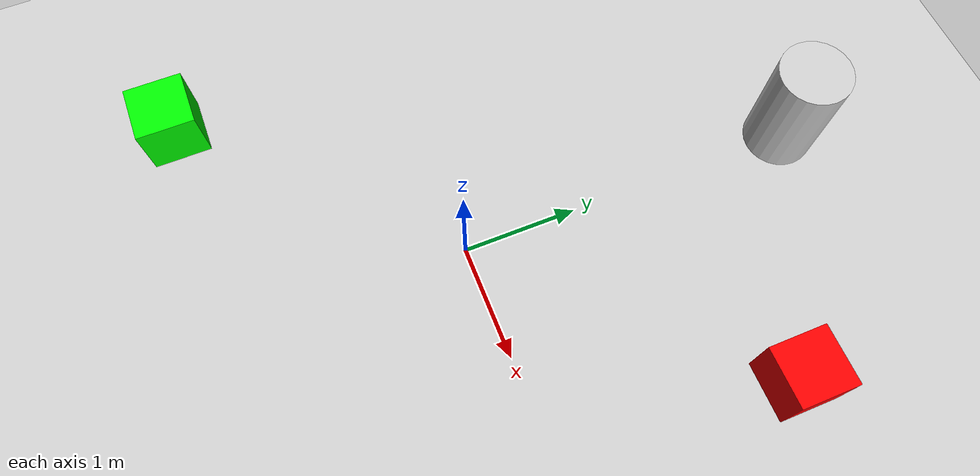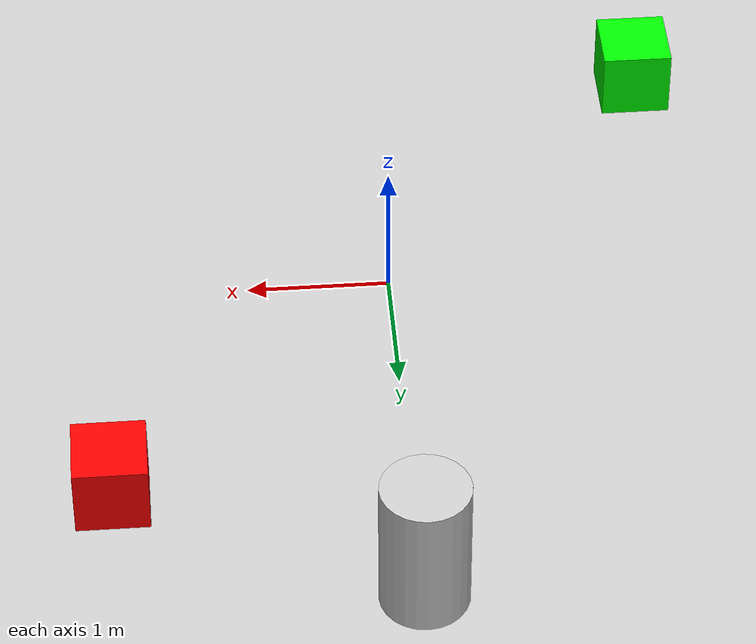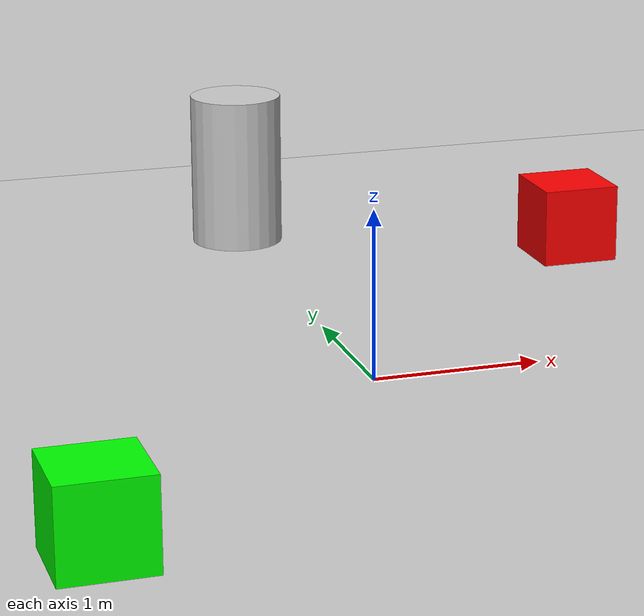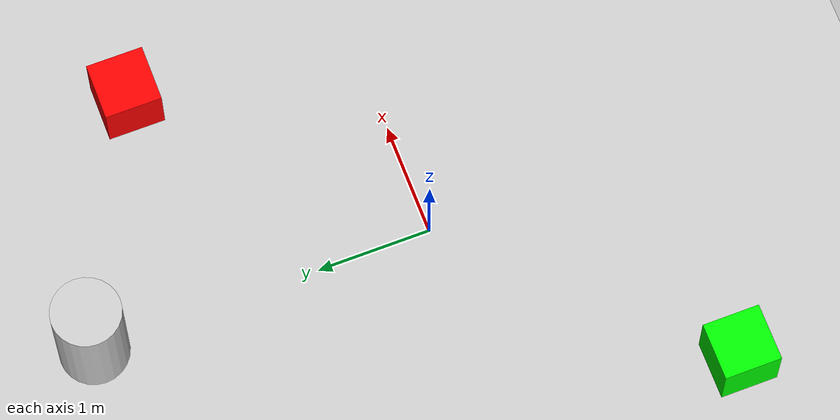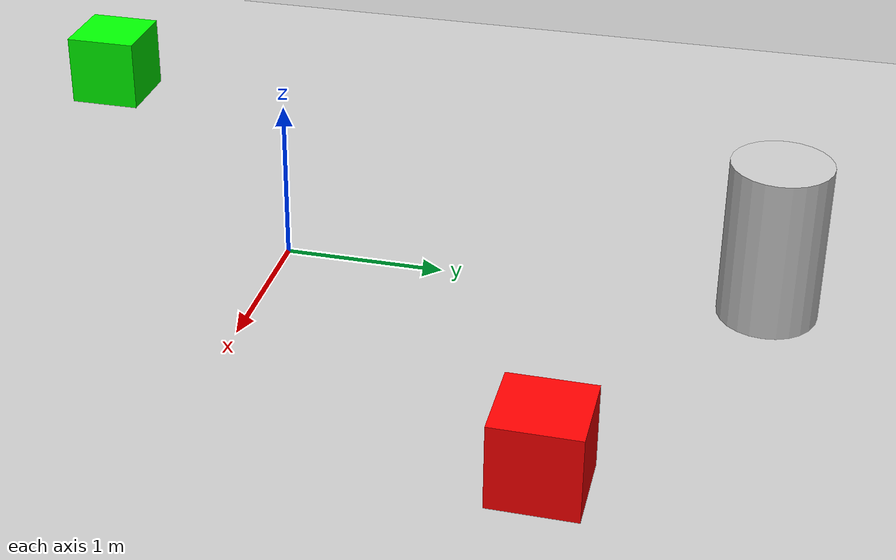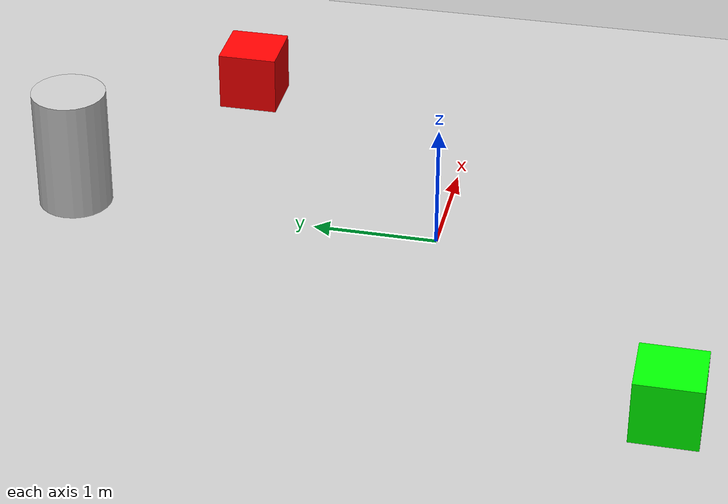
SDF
<?xml version="1.0" ?>
<sdf version="1.8">
  <world name="simple_world">
    <physics name="1ms" type="ignored">
      <max_step_size>0.001</max_step_size>
      <real_time_factor>1.0</real_time_factor>
    </physics>

    <plugin
      filename="gz-sim-physics-system"
      name="gz::sim::systems::Physics">
    </plugin>
    <plugin
      filename="gz-sim-user-commands-system"
      name="gz::sim::systems::UserCommands">
    </plugin>
    <plugin
      filename="gz-sim-scene-broadcaster-system"
      name="gz::sim::systems::SceneBroadcaster">
    </plugin>

    <light type="directional" name="sun">
      <cast_shadows>true</cast_shadows>
      <pose>0 0 10 0 0 0</pose>
      <diffuse>1.0 1.0 1.0 1</diffuse>
      <specular>0.5 0.5 0.5 1</specular>
      <attenuation>
        <range>1000</range>
        <constant>0.9</constant>
        <linear>0.01</linear>
        <quadratic>0.001</quadratic>
      </attenuation>
      <direction>-0.5 0.1 -0.9</direction>
    </light>

    <!-- Additional ambient lighting for better camera visibility -->
    <light type="directional" name="ambient_light">
      <cast_shadows>false</cast_shadows>
      <pose>0 0 5 0 0 0</pose>
      <diffuse>0.6 0.6 0.6 1</diffuse>
      <specular>0.1 0.1 0.1 1</specular>
      <direction>0 0 -1</direction>
    </light>

    <model name="ground_plane">
      <static>true</static>
      <link name="link">
        <collision name="collision">
          <geometry>
            <plane>
              <normal>0 0 1</normal>
              <size>100 100</size>
            </plane>
          </geometry>
          <!-- Add surface properties for Lidar reflection -->
          <surface>
            <friction>
              <ode>
                <mu>1.0</mu>
                <mu2>1.0</mu2>
              </ode>
            </friction>
            <bounce>
              <restitution_coefficient>0.0</restitution_coefficient>
            </bounce>
            <!-- Lidar material properties -->
            <contact>
              <ode/>
            </contact>
          </surface>
        </collision>
        <visual name="visual">
          <geometry>
            <plane>
              <normal>0 0 1</normal>
              <size>100 100</size>
            </plane>
          </geometry>
          <material>
            <ambient>0.8 0.8 0.8 1</ambient>
            <diffuse>0.8 0.8 0.8 1</diffuse>
            <specular>0.8 0.8 0.8 1</specular>
            <!-- Add reflectance for Lidar -->
            <pbr>
              <metal>
                <metalness>0.1</metalness>
                <roughness>0.3</roughness>
              </metal>
            </pbr>
          </material>
        </visual>
      </link>
    </model>

    <!-- High reflectivity box (should give high intensity) -->
    <model name="box1">
      <pose>2 2 0.25 0 0 0</pose>
      <static>true</static>
      <link name="link">
        <collision name="collision">
          <geometry>
            <box>
              <size>0.5 0.5 0.5</size>
            </box>
          </geometry>
          <surface>
            <friction>
              <ode>
                <mu>1.0</mu>
                <mu2>1.0</mu2>
              </ode>
            </friction>
            <bounce>
              <restitution_coefficient>0.0</restitution_coefficient>
            </bounce>
            <contact>
              <ode/>
            </contact>
          </surface>
        </collision>
        <visual name="visual">
          <geometry>
            <box>
              <size>0.5 0.5 0.5</size>
            </box>
          </geometry>
          <material>
            <ambient>1.0 0.0 0.0 1</ambient>
            <diffuse>1.0 0.0 0.0 1</diffuse>
            <specular>1.0 1.0 1.0 1</specular>
            <!-- High reflectivity material -->
            <pbr>
              <metal>
                <metalness>0.8</metalness>
                <roughness>0.1</roughness>
              </metal>
            </pbr>
          </material>
        </visual>
      </link>
    </model>

    <!-- Low reflectivity box (should give low intensity) -->
    <model name="box2">
      <pose>-2 -2 0.25 0 0 0</pose>
      <static>true</static>
      <link name="link">
        <collision name="collision">
          <geometry>
            <box>
              <size>0.5 0.5 0.5</size>
            </box>
          </geometry>
          <surface>
            <friction>
              <ode>
                <mu>1.0</mu>
                <mu2>1.0</mu2>
              </ode>
            </friction>
            <bounce>
              <restitution_coefficient>0.0</restitution_coefficient>
            </bounce>
            <contact>
              <ode/>
            </contact>
          </surface>
        </collision>
        <visual name="visual">
          <geometry>
            <box>
              <size>0.5 0.5 0.5</size>
            </box>
          </geometry>
          <material>
            <ambient>0.0 1.0 0.0 1</ambient>
            <diffuse>0.0 1.0 0.0 1</diffuse>
            <specular>0.0 0.0 0.0 1</specular>
            <!-- Low reflectivity (matte) material -->
            <pbr>
              <metal>
                <metalness>0.0</metalness>
                <roughness>0.9</roughness>
              </metal>
            </pbr>
          </material>
        </visual>
      </link>
    </model>

    <!-- Add a highly reflective metallic object -->
    <model name="metal_cylinder">
      <pose>0 3 0.5 0 0 0</pose>
      <static>true</static>
      <link name="link">
        <collision name="collision">
          <geometry>
            <cylinder>
              <radius>0.3</radius>
              <length>1.0</length>
            </cylinder>
          </geometry>
          <surface>
            <friction>
              <ode>
                <mu>1.0</mu>
                <mu2>1.0</mu2>
              </ode>
            </friction>
          </surface>
        </collision>
        <visual name="visual">
          <geometry>
            <cylinder>
              <radius>0.3</radius>
              <length>1.0</length>
            </cylinder>
          </geometry>
          <material>
            <ambient>0.7 0.7 0.7 1</ambient>
            <diffuse>0.8 0.8 0.8 1</diffuse>
            <specular>1.0 1.0 1.0 1</specular>
            <!-- Very high reflectivity (metallic) -->
            <pbr>
              <metal>
                <metalness>0.9</metalness>
                <roughness>0.05</roughness>
              </metal>
            </pbr>
          </material>
        </visual>
      </link>
    </model>

  </world>
</sdf>
